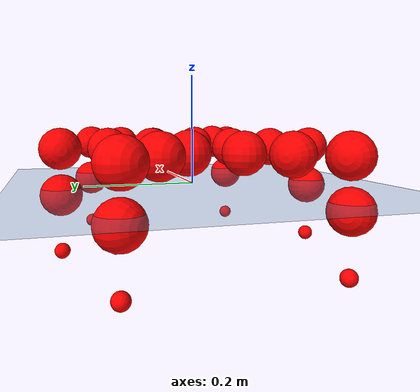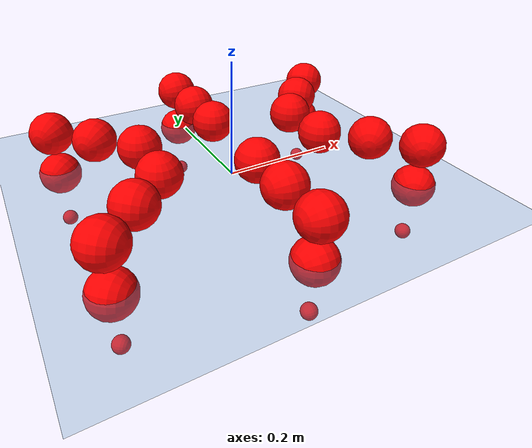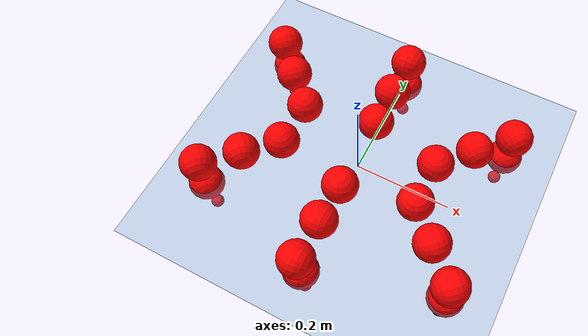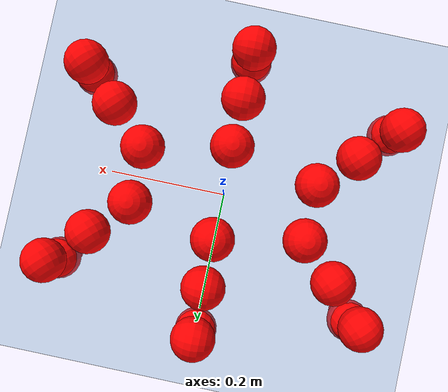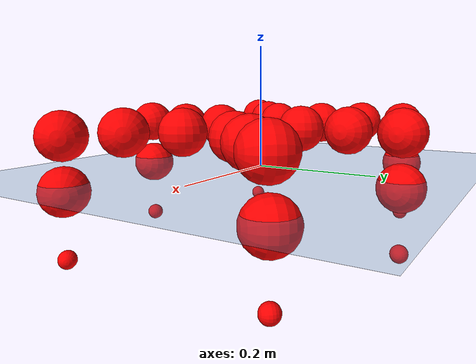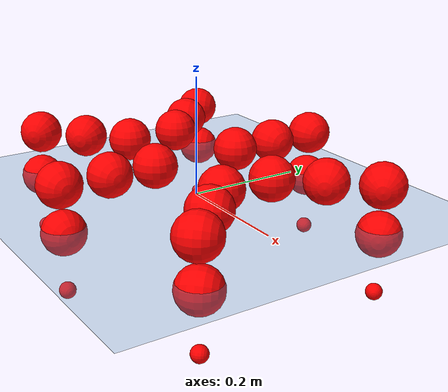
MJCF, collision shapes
<mujoco model="Golem">
  <compiler angle="radian" assetdir="assets" balanceinertia="true" inertiafromgeom="false"/>

  <option timestep="0.005" density="1.2" viscosity="2e-05"/>

  <size nkey="1"/>

  <visual>
    <quality shadowsize="8192"/>
    <map shadowclip="0.5"/>
  </visual>

  <default>
    <default class="/">
      <joint armature="0.01" damping="0.01" frictionloss="0.01"/>
      <geom contype="0" conaffinity="0" group="1" solref="-1000 -80"/>
      <site size="0.01 0.005 0.005" group="5"/>
      <general forcelimited="true" biastype="affine" gainprm="25" biasprm="0 -25 -0.5"/>
      <default class="visual">
        <geom type="mesh" group="2"/>
      </default>
      <default class="collision">
        <geom group="3"/>
      </default>
      <default class="foot">
        <geom size="0.01 0 0" condim="6" group="4" priority="1" solimp="0.015 1 0.01"/>
      </default>
      <default class="reward_collision_sphere">
        <geom group="5" rgba="1 0 0 1"/>
      </default>
    </default>
  </default>

  <asset>
    <texture type="skybox" colorspace="auto" name="//unnamed_texture_0" builtin="gradient" rgb1="0.95 0.95 0.95" rgb2="0.95 0.95 0.95" width="100" height="600"/>
    <texture type="2d" colorspace="auto" name="texplane" builtin="checker" rgb1="0.345 0.575 0.748" rgb2="0.345 0.575 0.748" markrgb="1 1 1" width="512" height="512"/>
    <material name="MatPlane" class="/" texture="texplane" texuniform="true" texrepeat="2 2" specular="0.9"/>
    <mesh name="body" class="/" file="body.stl" scale="0.001 0.001 0.001"/>
    <mesh name="coxa" class="/" file="coxa.stl" scale="0.001 0.001 0.001"/>
    <mesh name="femur" class="/" file="femur.stl" scale="0.001 0.001 0.001"/>
    <mesh name="tibia" class="/" file="tibia.stl" scale="0.001 0.001 0.001"/>
    <mesh name="tarsus" class="/" file="tarsus.stl" scale="0.001 0.001 0.001"/>
  </asset>

  <worldbody>
    <geom name="floor" class="/" size="100 100 0.125" type="plane" group="0" material="MatPlane"/>
    <light name="toplight_shadow" class="/" pos="0 0 5" dir="0.0990148 0.0990148 -0.990148" type="directional" ambient="0.04 0.04 0.04" diffuse="0.55 0.55 0.55" specular="0.12 0.12 0.12"/>
    <light name="toplight_fill" class="/" pos="0 0 5" dir="0.0990148 0.0990148 -0.990148" type="directional" castshadow="false" ambient="0.04 0.04 0.04" diffuse="0.3 0.3 0.3" specular="0.08 0.08 0.08"/>
    <body name="trunk" pos="3.49565e-05 0.00091346 -0.00160844" quat="0.999999 0.000238301 -0.001037 0.00053641">
      <inertial pos="0.000316749 -0.00021036 -0.00242818" quat="0.999994 -0.00173615 -0.00289316 -1.96474e-05" mass="2.70622" diaginertia="0.00683549 0.0030124 0.011176"/>
      <joint name="//unnamed_joint_0" type="free"/>
      <geom name="//unnamed_geom_1" class="/" pos="0 0 0.0654323" quat="1 0 0 0" type="mesh" rgba="0.9 0.9 0.9 1" mesh="body"/>
      <site name="imu" class="/" pos="0.125247 0.0123952 0.115564" size="0.00912136"/>
      <camera name="track" class="/" pos="0 -1.57746 0" quat="0.707107 0.707107 0 0" mode="trackcom"/>
      <camera name="ego_camera" class="/" pos="0.120289 0 0.102238" quat="-0.5 -0.5 0.5 0.5"/>
      <body name="coxa_RR" pos="-0.165747 -0.0653264 0.0663687" quat="0.382318 0.00102213 0.000731115 -0.92403">
        <inertial pos="0.0021757 -0.000693131 -0.000823969" quat="1 -0.000479451 -0.000268419 8.4572e-05" mass="0.158572" diaginertia="0.00694065 0.00319224 0.0116655"/>
        <joint name="coxa_joint_RR" class="/" pos="0 0 0" axis="0.00439664 -0.00513522 -0.999977" range="-3.13848 3.15457" armature="0.00856863" damping="0" frictionloss="0.00896219"/>
        <geom name="//unnamed_geom_2" class="/" type="mesh" rgba="0.2 0.2 0.2 1" mesh="coxa"/>
        <geom name="//unnamed_geom_3" class="reward_collision_sphere" size="0.0364855" pos="-0.0277589 0 0"/>
        <body name="femur_RR" pos="0.0535408 -0.000363073 0.00116734" quat="0.498986 -0.499992 0.500907 0.500114">
          <inertial pos="-0.000170285 0.00262764 0.000883204" quat="0.999972 -0.00738839 0.00137659 0.000345704" mass="0.14717" diaginertia="0.00666407 0.00293993 0.0107775"/>
          <joint name="femur_joint_RR" class="/" pos="0 0 0" axis="0.00231259 -0.00138249 -0.999996" stiffness="0.00038909" range="-3.15333 3.15258" armature="0.0102386" damping="0.0010871" frictionloss="0.00904916"/>
          <geom name="//unnamed_geom_4" class="/" type="mesh" rgba="0.9 0.9 0.9 1" mesh="femur"/>
          <geom name="//unnamed_geom_5" class="reward_collision_sphere" size="0.0364855"/>
          <body name="tibia_RR" pos="-0.00165567 -0.0852124 -0.000608362" quat="-1.97887e-05 1 0.000201487 -5.24002e-05">
            <inertial pos="5.50759e-05 0.00281347 -0.000908409" quat="1 -9.61006e-05 0.00012185 -0.00022281" mass="0.146921" diaginertia="0.00657254 0.00296115 0.0108854"/>
            <joint name="tibia_joint_RR" class="/" pos="0 0 0" axis="0.00174922 -0.0140245 0.9999" range="-3.08564 3.11889" armature="0.00859092" damping="0.00454468" frictionloss="0.0103004"/>
            <geom name="//unnamed_geom_6" class="/" type="mesh" rgba="0.2 0.2 0.2 1" mesh="tibia"/>
            <geom name="//unnamed_geom_7" class="reward_collision_sphere" size="0.0364855"/>
            <body name="tarsus_RR" pos="0.0813052 0.00256562 -0.00251922" quat="1 4.16216e-05 -0.00033866 0.000356224">
              <inertial pos="0.0561624 0.00132263 0.00199113" quat="0.500947 0.497686 0.501447 0.499911" mass="0.146921" diaginertia="0.00648249 0.00298595 0.0111534"/>
              <joint name="tarsus_joint_RR" class="/" pos="0 0 0" axis="0.00154017 -0.00981866 0.999951" range="-3.15928 3.13881" armature="0.00937975" damping="0.00669827" frictionloss="0.00885115"/>
              <geom name="//unnamed_geom_8" class="/" type="mesh" rgba="0.9 0.9 0.9 1" mesh="tarsus"/>
              <geom name="foot_1" class="foot" size="0.00827647" pos="0.103633 0 0" quat="0 -0.707107 0 0.707107"/>
              <geom name="//unnamed_geom_10" class="reward_collision_sphere" size="0.0364855"/>
              <geom name="//unnamed_geom_11" class="reward_collision_sphere" size="0.013682" pos="0.0994694 0 0"/>
              <site name="foot_1" class="foot" pos="0.103633 0 0" quat="0 -0.707107 0 0.707107" size="0.00912136"/>
            </body>
          </body>
        </body>
      </body>
      <body name="coxa_RM" pos="0.00237345 -0.107507 0.0676829" quat="0.70687 2.64689e-05 0.000332815 -0.707343">
        <inertial pos="-1.30448e-05 0.000187094 -0.00229331" quat="0.999911 -0.00670692 -0.0115114 -0.000837513" mass="0.155617" diaginertia="0.00703963 0.00326049 0.0118609"/>
        <joint name="coxa_joint_RM" class="/" pos="0 0 0" axis="0.0105575 -0.00415552 -0.999936" range="-3.13728 3.12203" armature="0.00955575" damping="0.0100506" frictionloss="0.00988505"/>
        <geom name="//unnamed_geom_12" class="/" type="mesh" rgba="0.2 0.2 0.2 1" mesh="coxa"/>
        <geom name="//unnamed_geom_13" class="reward_collision_sphere" size="0.0364855" pos="-0.0277589 0 0"/>
        <body name="femur_RM" pos="0.0524219 -0.00152189 -8.60944e-06" quat="0.500239 -0.500084 0.499884 0.499793">
          <inertial pos="0.000250096 0.0018344 -3.9388e-05" quat="0.99999 -0.00351251 0.00273296 0.000590741" mass="0.152849" diaginertia="0.00654028 0.00301918 0.0110458"/>
          <joint name="femur_joint_RM" class="/" pos="0 0 0" axis="0.000831063 0.000470766 -1" range="-3.09219 3.15082" armature="0.0100283" damping="0.0123325" frictionloss="0.0103236"/>
          <geom name="//unnamed_geom_14" class="/" type="mesh" rgba="0.9 0.9 0.9 1" mesh="femur"/>
          <geom name="//unnamed_geom_15" class="reward_collision_sphere" size="0.0364855"/>
          <body name="tibia_RM" pos="-0.000650037 -0.0846428 -0.000588505" quat="0.000156186 1 0.000173631 0.000268573">
            <inertial pos="0.000287603 0.000309392 0.0022846" quat="0.999986 -3.27907e-05 0.00478715 -0.00210775" mass="0.156723" diaginertia="0.00672799 0.0030585 0.0110655"/>
            <joint name="tibia_joint_RM" class="/" pos="0 0 0" axis="-0.00976325 -0.00655843 0.999931" range="-3.14081 3.17617" armature="0.00788068" damping="0.0154081" frictionloss="0.0103519"/>
            <geom name="//unnamed_geom_16" class="/" type="mesh" rgba="0.2 0.2 0.2 1" mesh="tibia"/>
            <geom name="//unnamed_geom_17" class="reward_collision_sphere" size="0.0364855"/>
            <body name="tarsus_RM" pos="0.0785103 -0.00238748 -0.00062484" quat="1 -0.000686667 -0.000191337 0.000652239">
              <inertial pos="0.0556301 9.79813e-05 0.000340969" quat="0.499095 0.499856 0.501739 0.499306" mass="0.161216" diaginertia="0.00698005 0.00315657 0.0115755"/>
              <joint name="tarsus_joint_RM" class="/" pos="0 0 0" axis="0.00106232 -0.000539298 0.999999" range="-3.14686 3.15914" armature="0.00897072" damping="0.0103315" frictionloss="0.00863588"/>
              <geom name="//unnamed_geom_18" class="/" type="mesh" rgba="0.9 0.9 0.9 1" mesh="tarsus"/>
              <geom name="foot_2" class="foot" size="0.00860791" pos="0.103633 0 0" quat="0 -0.707107 0 0.707107"/>
              <geom name="//unnamed_geom_20" class="reward_collision_sphere" size="0.0364855"/>
              <geom name="//unnamed_geom_21" class="reward_collision_sphere" size="0.013682" pos="0.0994694 0 0"/>
              <site name="foot_2" class="foot" pos="0.103633 0 0" quat="0 -0.707107 0 0.707107" size="0.00912136"/>
            </body>
          </body>
        </body>
      </body>
      <body name="coxa_RF" pos="0.164698 -0.0680255 0.06809" quat="0.92404 0.000148731 0.000139129 -0.382295">
        <inertial pos="-0.00259757 9.68899e-05 -0.00200994" quat="0.999973 0.000145358 -0.00361964 -0.00634664" mass="0.151324" diaginertia="0.00702443 0.00312621 0.011639"/>
        <joint name="coxa_joint_RF" class="/" pos="0 0 0" axis="-0.00800574 -0.00540207 -0.999953" range="-3.13872 3.10749" armature="0.00951996" damping="0.0219609" frictionloss="0.0103324"/>
        <geom name="//unnamed_geom_22" class="/" type="mesh" rgba="0.2 0.2 0.2 1" mesh="coxa"/>
        <geom name="//unnamed_geom_23" class="reward_collision_sphere" size="0.0364855" pos="-0.0277589 0 0"/>
        <body name="femur_RF" pos="0.0568991 -0.000392697 0.00131415" quat="0.499354 -0.500542 0.499301 0.500802">
          <inertial pos="-0.000562374 0.000331676 0.00109362" quat="0.999989 -0.00350481 0.00302101 -0.000523677" mass="0.152937" diaginertia="0.00669142 0.00301503 0.0109534"/>
          <joint name="femur_joint_RF" class="/" pos="0 0 0" axis="-0.000983117 0.00160101 -0.999998" range="-3.13358 3.13377" armature="0.00924843" damping="0.0115383" frictionloss="0.00889351"/>
          <geom name="//unnamed_geom_24" class="/" type="mesh" rgba="0.9 0.9 0.9 1" mesh="femur"/>
          <geom name="//unnamed_geom_25" class="reward_collision_sphere" size="0.0364855"/>
          <body name="tibia_RF" pos="0.0026441 -0.0837812 0.00161164" quat="3.43116e-05 1 1.6299e-05 0.000140221">
            <inertial pos="0.000406949 -0.00249497 -0.00240089" quat="0.999913 -0.00382345 -0.00149554 0.0125354" mass="0.147101" diaginertia="0.00659754 0.0029923 0.0111701"/>
            <joint name="tibia_joint_RF" class="/" pos="0 0 0" axis="0.0112852 -0.00390892 0.999929" stiffness="0.00619895" range="-3.15103 3.1465" armature="0.00937903" damping="0.00432338" frictionloss="0.00853677"/>
            <geom name="//unnamed_geom_26" class="/" type="mesh" rgba="0.2 0.2 0.2 1" mesh="tibia"/>
            <geom name="//unnamed_geom_27" class="reward_collision_sphere" size="0.0364855"/>
            <body name="tarsus_RF" pos="0.0788076 -0.000319286 -0.00172444" quat="1 -1.4975e-05 -2.23137e-05 -7.55084e-06">
              <inertial pos="0.0539501 -0.000924708 0.000248986" quat="0.499341 0.499753 0.501859 0.499042" mass="0.151675" diaginertia="0.00671826 0.00294286 0.0109991"/>
              <joint name="tarsus_joint_RF" class="/" pos="0 0 0" axis="0.0095285 0.0126855 0.999874" stiffness="0.001991" range="-3.12577 3.16153" armature="0.00940467" damping="0" frictionloss="0.00961173"/>
              <geom name="//unnamed_geom_28" class="/" type="mesh" rgba="0.9 0.9 0.9 1" mesh="tarsus"/>
              <geom name="foot_3" class="foot" size="0.0091066" pos="0.103633 0 0" quat="0 -0.707107 0 0.707107"/>
              <geom name="//unnamed_geom_30" class="reward_collision_sphere" size="0.0364855"/>
              <geom name="//unnamed_geom_31" class="reward_collision_sphere" size="0.013682" pos="0.0994694 0 0"/>
              <site name="foot_3" class="foot" pos="0.103633 0 0" quat="0 -0.707107 0 0.707107" size="0.00912136"/>
            </body>
          </body>
        </body>
      </body>
      <body name="coxa_LR" pos="-0.164043 0.0661806 0.0682667" quat="0.383803 -9.92774e-05 -0.000576167 0.923415">
        <inertial pos="-0.000485398 0.00219575 -0.00228149" quat="0.999986 -0.00157529 -0.00400317 -0.00306737" mass="0.149189" diaginertia="0.00675779 0.00294736 0.0110459"/>
        <joint name="coxa_joint_LR" class="/" pos="0 0 0" axis="0.0137079 0.00622519 -0.999887" stiffness="0.00126184" range="-3.14492 3.19271" armature="0.00927159" damping="0.0119319" frictionloss="0.0100334"/>
        <geom name="//unnamed_geom_32" class="/" type="mesh" rgba="0.2 0.2 0.2 1" mesh="coxa"/>
        <geom name="//unnamed_geom_33" class="reward_collision_sphere" size="0.0364855" pos="-0.0277589 0 0"/>
        <body name="femur_LR" pos="0.054455 0.000232073 0.000310157" quat="0.499971 -0.499939 0.500038 0.500052">
          <inertial pos="-0.00044382 0.00191156 -0.000634282" quat="0.999908 -0.00992152 0.00878856 -0.00276653" mass="0.153102" diaginertia="0.00705849 0.00312193 0.0110862"/>
          <joint name="femur_joint_LR" class="/" pos="0 0 0" axis="0.000814235 -0.0135205 0.999908" range="-3.14988 3.13504" armature="0.0102629" damping="0.00477719" frictionloss="0.0093378"/>
          <geom name="//unnamed_geom_34" class="/" type="mesh" rgba="0.9 0.9 0.9 1" mesh="femur"/>
          <geom name="//unnamed_geom_35" class="reward_collision_sphere" size="0.0364855"/>
          <body name="tibia_LR" pos="0.00179164 -0.0856581 -0.00304378" quat="-0.000111575 1 -1.88726e-06 -0.000195809">
            <inertial pos="-0.000878567 -0.000469201 0.00239615" quat="0.999956 0.000682875 -0.00544919 -0.00757879" mass="0.154705" diaginertia="0.00660461 0.00302424 0.0110247"/>
            <joint name="tibia_joint_LR" class="/" pos="0 0 0" axis="-0.00073704 -0.000126043 -1" stiffness="0.000183904" range="-3.08616 3.18015" armature="0.00798085" damping="0.0016552" frictionloss="0.00917368"/>
            <geom name="//unnamed_geom_36" class="/" type="mesh" rgba="0.2 0.2 0.2 1" mesh="tibia"/>
            <geom name="//unnamed_geom_37" class="reward_collision_sphere" size="0.0364855"/>
            <body name="tarsus_LR" pos="0.0804677 1.02615e-05 0.00205336" quat="1 9.10117e-05 -6.96124e-05 -1.96806e-05">
              <inertial pos="0.056464 -0.00231114 -0.00102696" quat="0.500006 0.500264 0.499936 0.499793" mass="0.147769" diaginertia="0.00683629 0.0031748 0.0113771"/>
              <joint name="tarsus_joint_LR" class="/" pos="0 0 0" axis="0.000171111 -0.00192136 -0.999998" range="-3.11825 3.16703" armature="0.009262" damping="0.00262956" frictionloss="0.00854275"/>
              <geom name="//unnamed_geom_38" class="/" type="mesh" rgba="0.9 0.9 0.9 1" mesh="tarsus"/>
              <geom name="foot_4" class="foot" size="0.00955846" pos="0.103633 0 0" quat="0.707107 0 -0.707107 0"/>
              <geom name="//unnamed_geom_40" class="reward_collision_sphere" size="0.0364855"/>
              <geom name="//unnamed_geom_41" class="reward_collision_sphere" size="0.013682" pos="0.0994694 0 0"/>
              <site name="foot_4" class="foot" pos="0.103633 0 0" quat="0.707107 0 -0.707107 0" size="0.00912136"/>
            </body>
          </body>
        </body>
      </body>
      <body name="coxa_LM" pos="0.00244129 0.103265 0.0686877" quat="0.706775 0.000469495 -0.000426822 0.707438">
        <inertial pos="0.00058417 0.000370631 -0.00224447" quat="0.999987 0.00133614 0.00439703 -0.00207687" mass="0.150246" diaginertia="0.00673496 0.00301533 0.011079"/>
        <joint name="coxa_joint_LM" class="/" pos="0 0 0" axis="0.00131743 0.00624029 -0.99998" range="-3.11871 3.12819" armature="0.00885078" damping="0.00245032" frictionloss="0.00917458"/>
        <geom name="//unnamed_geom_42" class="/" type="mesh" rgba="0.2 0.2 0.2 1" mesh="coxa"/>
        <geom name="//unnamed_geom_43" class="reward_collision_sphere" size="0.0364855" pos="-0.0277589 0 0"/>
        <body name="femur_LM" pos="0.0518564 0.00121024 0.000456541" quat="0.500022 -0.499939 0.49992 0.500119">
          <inertial pos="-0.00201905 -0.000728673 -0.00272574" quat="0.999943 0.00760379 0.000316304 0.00750464" mass="0.149266" diaginertia="0.00675217 0.00301559 0.0111972"/>
          <joint name="femur_joint_LM" class="/" pos="0 0 0" axis="0.00211017 -0.00161711 0.999996" range="-3.16043 3.08558" armature="0.00855504" damping="0" frictionloss="0.00798663"/>
          <geom name="//unnamed_geom_44" class="/" type="mesh" rgba="0.9 0.9 0.9 1" mesh="femur"/>
          <geom name="//unnamed_geom_45" class="reward_collision_sphere" size="0.0364855"/>
          <body name="tibia_LM" pos="-0.000136136 -0.0826881 0.000715077" quat="-8.36423e-05 1 -0.000205631 -0.000193453">
            <inertial pos="0.000293023 -0.000889459 0.000299374" quat="0.999989 0.00285353 -0.00307981 -0.00214451" mass="0.148777" diaginertia="0.00655078 0.00296531 0.0108556"/>
            <joint name="tibia_joint_LM" class="/" pos="0 0 0" axis="-0.00346563 0.013088 -0.999908" range="-3.09207 3.12388" armature="0.0102631" damping="0" frictionloss="0.0102076"/>
            <geom name="//unnamed_geom_46" class="/" type="mesh" rgba="0.2 0.2 0.2 1" mesh="tibia"/>
            <geom name="//unnamed_geom_47" class="reward_collision_sphere" size="0.0364855"/>
            <body name="tarsus_LM" pos="0.0809828 -0.000551872 -0.000778391" quat="1 -8.86415e-05 -1.54746e-05 6.20072e-05">
              <inertial pos="0.0551707 -0.00223854 0.00023513" quat="0.501899 0.497786 0.501791 0.49851" mass="0.146018" diaginertia="0.00664305 0.00285996 0.0108664"/>
              <joint name="tarsus_joint_LM" class="/" pos="0 0 0" axis="0.00599063 -0.000756353 -0.999982" stiffness="0.0130562" range="-3.13783 3.13585" armature="0.00947861" damping="0.022921" frictionloss="0.0103465"/>
              <geom name="//unnamed_geom_48" class="/" type="mesh" rgba="0.9 0.9 0.9 1" mesh="tarsus"/>
              <geom name="foot_5" class="foot" size="0.00966949" pos="0.103633 0 0" quat="0.707107 0 -0.707107 0"/>
              <geom name="//unnamed_geom_50" class="reward_collision_sphere" size="0.0364855"/>
              <geom name="//unnamed_geom_51" class="reward_collision_sphere" size="0.013682" pos="0.0994694 0 0"/>
              <site name="foot_5" class="foot" pos="0.103633 0 0" quat="0.707107 0 -0.707107 0" size="0.00912136"/>
            </body>
          </body>
        </body>
      </body>
      <body name="coxa_LF" pos="0.165925 0.0637055 0.066364" quat="0.923798 -5.28096e-05 0.000139836 0.382879">
        <inertial pos="-0.00251237 -0.00253847 -0.00171916" quat="0.999991 0.003011 0.00272954 -0.000807084" mass="0.146559" diaginertia="0.00658139 0.00286587 0.0111473"/>
        <joint name="coxa_joint_LF" class="/" pos="0 0 0" axis="0.00999407 -1.73376e-05 -0.99995" range="-3.16125 3.13693" armature="0.00889894" damping="0.0054947" frictionloss="0.00812938"/>
        <geom name="//unnamed_geom_52" class="/" type="mesh" rgba="0.2 0.2 0.2 1" mesh="coxa"/>
        <geom name="//unnamed_geom_53" class="reward_collision_sphere" size="0.0364855" pos="-0.0277589 0 0"/>
        <body name="femur_LF" pos="0.0552678 0.00289023 0.00103889" quat="0.499234 -0.500111 0.500262 0.500392">
          <inertial pos="-0.0001654 -0.00135478 -0.00088151" quat="1 9.27097e-05 4.51227e-05 -0.000142248" mass="0.145484" diaginertia="0.00634038 0.00294805 0.0108042"/>
          <joint name="femur_joint_LF" class="/" pos="0 0 0" axis="0.00940941 -0.0116953 0.999887" stiffness="0.000193796" range="-3.14966 3.18502" armature="0.00866163" damping="0.00922205" frictionloss="0.00890924"/>
          <geom name="//unnamed_geom_54" class="/" type="mesh" rgba="0.9 0.9 0.9 1" mesh="femur"/>
          <geom name="//unnamed_geom_55" class="reward_collision_sphere" size="0.0364855"/>
          <body name="tibia_LF" pos="-0.000594373 -0.0847909 -0.00028513" quat="0.000284733 1 -0.000399078 6.57739e-05">
            <inertial pos="0.00131056 0.00282172 -0.00075931" quat="1 -2.27285e-05 -0.000322315 -0.000734982" mass="0.156564" diaginertia="0.00671375 0.00307056 0.011134"/>
            <joint name="tibia_joint_LF" class="/" pos="0 0 0" axis="-0.00741244 0.00274866 -0.999969" range="-3.13607 3.09314" armature="0.00926807" damping="0.00451868" frictionloss="0.00869997"/>
            <geom name="//unnamed_geom_56" class="/" type="mesh" rgba="0.2 0.2 0.2 1" mesh="tibia"/>
            <geom name="//unnamed_geom_57" class="reward_collision_sphere" size="0.0364855"/>
            <body name="tarsus_LF" pos="0.0813338 -0.000484643 -0.00299788" quat="1 1.88409e-06 9.06865e-05 -5.78187e-05">
              <inertial pos="0.0540966 -0.000679608 0.00105518" quat="0.508465 0.490582 0.501573 0.499217" mass="0.152105" diaginertia="0.00680865 0.00306171 0.0112386"/>
              <joint name="tarsus_joint_LF" class="/" pos="0 0 0" axis="-0.00164465 -0.0107345 -0.999941" stiffness="0.0275737" range="-3.12979 3.09946" armature="0.00903137" damping="0.0358257" frictionloss="0.00895001"/>
              <geom name="//unnamed_geom_58" class="/" type="mesh" rgba="0.9 0.9 0.9 1" mesh="tarsus"/>
              <geom name="foot_6" class="foot" size="0.00876709" pos="0.103633 0 0" quat="0.707107 0 -0.707107 0"/>
              <geom name="//unnamed_geom_60" class="reward_collision_sphere" size="0.0364855"/>
              <geom name="//unnamed_geom_61" class="reward_collision_sphere" size="0.013682" pos="0.0994694 0 0"/>
              <site name="foot_6" class="foot" pos="0.103633 0 0" quat="0.707107 0 -0.707107 0" size="0.00912136"/>
            </body>
          </body>
        </body>
      </body>
    </body>
  </worldbody>

  <contact>
    <pair class="/" geom1="floor" geom2="foot_1" name="//unnamed_contact_0"/>
    <pair class="/" geom1="floor" geom2="foot_2" name="//unnamed_contact_1"/>
    <pair class="/" geom1="floor" geom2="foot_3" name="//unnamed_contact_2"/>
    <pair class="/" geom1="floor" geom2="foot_4" name="//unnamed_contact_3"/>
    <pair class="/" geom1="floor" geom2="foot_5" name="//unnamed_contact_4"/>
    <pair class="/" geom1="floor" geom2="foot_6" name="//unnamed_contact_5"/>
  </contact>

  <actuator>
    <general name="coxa_joint_RR" class="/" joint="coxa_joint_RR" forcerange="-6.60305 6.60305" gainprm="22.3649" biasprm="0 -22.3649 -0.46812"/>
    <general name="femur_joint_RR" class="/" joint="femur_joint_RR" forcerange="-6.42239 6.42239" gainprm="22.3649" biasprm="0 -22.3649 -0.46812"/>
    <general name="tibia_joint_RR" class="/" joint="tibia_joint_RR" forcerange="-6.73965 6.73965" gainprm="22.3649" biasprm="0 -22.3649 -0.46812"/>
    <general name="tarsus_joint_RR" class="/" joint="tarsus_joint_RR" forcerange="-7.25515 7.25515" gainprm="22.3649" biasprm="0 -22.3649 -0.46812"/>
    <general name="coxa_joint_RM" class="/" joint="coxa_joint_RM" forcerange="-6.70645 6.70645" gainprm="22.3649" biasprm="0 -22.3649 -0.46812"/>
    <general name="femur_joint_RM" class="/" joint="femur_joint_RM" forcerange="-7.26095 7.26095" gainprm="22.3649" biasprm="0 -22.3649 -0.46812"/>
    <general name="tibia_joint_RM" class="/" joint="tibia_joint_RM" forcerange="-6.44948 6.44948" gainprm="22.3649" biasprm="0 -22.3649 -0.46812"/>
    <general name="tarsus_joint_RM" class="/" joint="tarsus_joint_RM" forcerange="-6.67496 6.67496" gainprm="22.3649" biasprm="0 -22.3649 -0.46812"/>
    <general name="coxa_joint_RF" class="/" joint="coxa_joint_RF" forcerange="-6.06596 6.06596" gainprm="22.3649" biasprm="0 -22.3649 -0.46812"/>
    <general name="femur_joint_RF" class="/" joint="femur_joint_RF" forcerange="-6.481 6.481" gainprm="22.3649" biasprm="0 -22.3649 -0.46812"/>
    <general name="tibia_joint_RF" class="/" joint="tibia_joint_RF" forcerange="-6.54079 6.54079" gainprm="22.3649" biasprm="0 -22.3649 -0.46812"/>
    <general name="tarsus_joint_RF" class="/" joint="tarsus_joint_RF" forcerange="-6.43243 6.43243" gainprm="22.3649" biasprm="0 -22.3649 -0.46812"/>
    <general name="coxa_joint_LR" class="/" joint="coxa_joint_LR" forcerange="-6.62589 6.62589" gainprm="22.3649" biasprm="0 -22.3649 -0.46812"/>
    <general name="femur_joint_LR" class="/" joint="femur_joint_LR" forcerange="-6.6496 6.6496" gainprm="22.3649" biasprm="0 -22.3649 -0.46812"/>
    <general name="tibia_joint_LR" class="/" joint="tibia_joint_LR" forcerange="-6.70874 6.70874" gainprm="22.3649" biasprm="0 -22.3649 -0.46812"/>
    <general name="tarsus_joint_LR" class="/" joint="tarsus_joint_LR" forcerange="-6.78146 6.78146" gainprm="22.3649" biasprm="0 -22.3649 -0.46812"/>
    <general name="coxa_joint_LM" class="/" joint="coxa_joint_LM" forcerange="-6.92388 6.92388" gainprm="22.3649" biasprm="0 -22.3649 -0.46812"/>
    <general name="femur_joint_LM" class="/" joint="femur_joint_LM" forcerange="-6.91415 6.91415" gainprm="22.3649" biasprm="0 -22.3649 -0.46812"/>
    <general name="tibia_joint_LM" class="/" joint="tibia_joint_LM" forcerange="-6.63473 6.63473" gainprm="22.3649" biasprm="0 -22.3649 -0.46812"/>
    <general name="tarsus_joint_LM" class="/" joint="tarsus_joint_LM" forcerange="-6.63755 6.63755" gainprm="22.3649" biasprm="0 -22.3649 -0.46812"/>
    <general name="coxa_joint_LF" class="/" joint="coxa_joint_LF" forcerange="-6.45555 6.45555" gainprm="22.3649" biasprm="0 -22.3649 -0.46812"/>
    <general name="femur_joint_LF" class="/" joint="femur_joint_LF" forcerange="-6.7061 6.7061" gainprm="22.3649" biasprm="0 -22.3649 -0.46812"/>
    <general name="tibia_joint_LF" class="/" joint="tibia_joint_LF" forcerange="-6.58708 6.58708" gainprm="22.3649" biasprm="0 -22.3649 -0.46812"/>
    <general name="tarsus_joint_LF" class="/" joint="tarsus_joint_LF" forcerange="-6.60416 6.60416" gainprm="22.3649" biasprm="0 -22.3649 -0.46812"/>
  </actuator>

  <sensor>
    <gyro site="imu" name="imu_angular_velocity"/>
    <velocimeter site="imu" name="imu_linear_velocity"/>
    <framelinvel objtype="site" objname="foot_1" name="foot_1_global_linear_velocity"/>
    <framelinvel objtype="site" objname="foot_2" name="foot_2_global_linear_velocity"/>
    <framelinvel objtype="site" objname="foot_3" name="foot_3_global_linear_velocity"/>
    <framelinvel objtype="site" objname="foot_4" name="foot_4_global_linear_velocity"/>
    <framelinvel objtype="site" objname="foot_5" name="foot_5_global_linear_velocity"/>
    <framelinvel objtype="site" objname="foot_6" name="foot_6_global_linear_velocity"/>
  </sensor>

  <keyframe>
    <key name="home" qpos="0 0 0.1457 1 0 0 0 0 0 0 0 0 0 0 0 0 0 0 0 0 0 0 0 0 0 0 0 0 0 0 0"/>
  </keyframe>
</mujoco>
